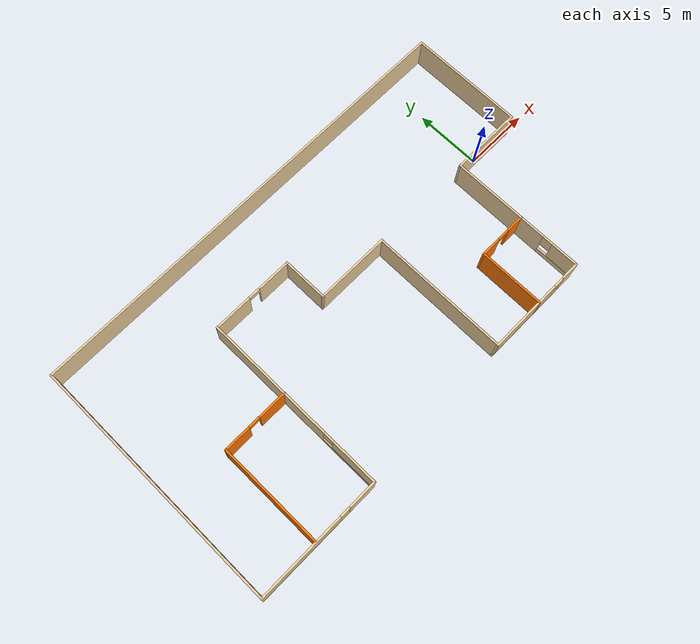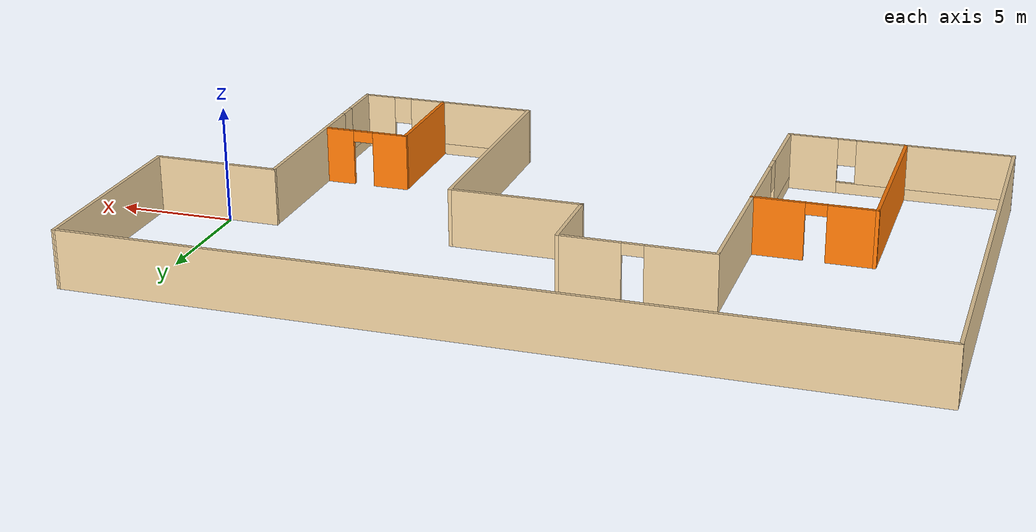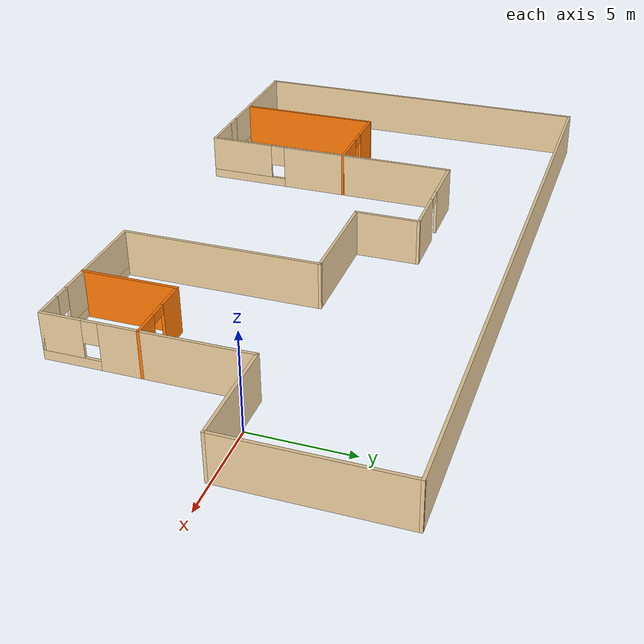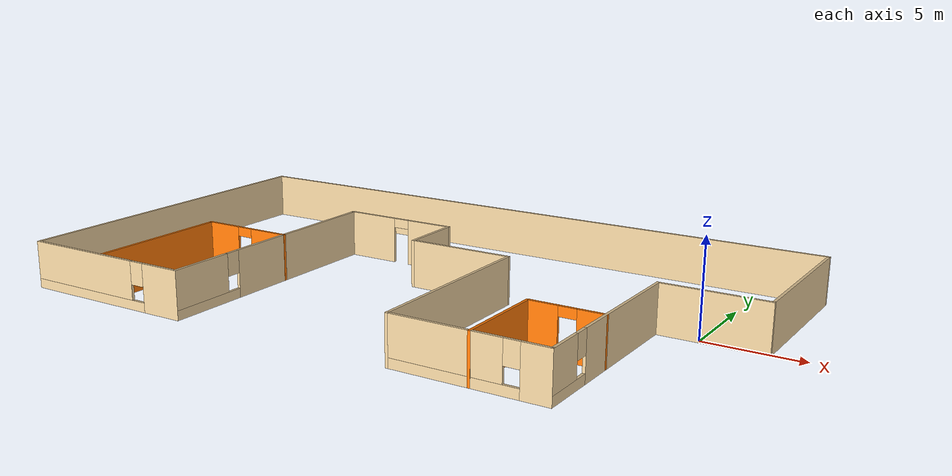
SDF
<?xml version='1.0'?>
<sdf version='1.6'>
  <model name='appartment'>
    <pose frame=''>-14.1397 -1.23394 0 0 -0 0</pose>
    <link name='Wall_0'>
      <collision name='Wall_0_Collision'>
        <geometry>
          <box>
            <size>19.4596 0.15 2.5</size>
          </box>
        </geometry>
        <pose frame=''>0 0 1.25 0 -0 0</pose>
      </collision>
      <visual name='Wall_0_Visual'>
        <pose frame=''>0 0 1.25 0 -0 0</pose>
        <geometry>
          <box>
            <size>19.4596 0.15 2.5</size>
          </box>
        </geometry>
        <material>
          <script>
            <uri>file://media/materials/scripts/gazebo.material</uri>
            <name>Gazebo/Grey</name>
          </script>
          <ambient>0.921569 0.807843 0.615686 1</ambient>
        </material>
        <meta>
          <layer>0</layer>
        </meta>
      </visual>
      <pose frame=''>-17.4083 -0.020065 0 0 -0 1.5708</pose>
    </link>
    <link name='Wall_1'>
      <collision name='Wall_1_Collision'>
        <geometry>
          <box>
            <size>34.9669 0.15 2.5</size>
          </box>
        </geometry>
        <pose frame=''>0 0 1.25 0 -0 0</pose>
      </collision>
      <visual name='Wall_1_Visual'>
        <pose frame=''>0 0 1.25 0 -0 0</pose>
        <geometry>
          <box>
            <size>34.9669 0.15 2.5</size>
          </box>
        </geometry>
        <material>
          <script>
            <uri>file://media/materials/scripts/gazebo.material</uri>
            <name>Gazebo/Grey</name>
          </script>
          <ambient>0.921569 0.807843 0.615686 1</ambient>
        </material>
        <meta>
          <layer>0</layer>
        </meta>
      </visual>
      <pose frame=''>0 9.65496 0 0 -0 0.00115</pose>
    </link>
    <link name='Wall_10'>
      <pose frame=''>-7.7415 -2.62504 0 0 0 -1.57076</pose>
      <visual name='Wall_10_Visual_0'>
        <pose frame=''>-2.2093 0 1.25 0 -0 0</pose>
        <geometry>
          <box>
            <size>9.8314 0.15 2.5</size>
          </box>
        </geometry>
        <material>
          <script>
            <uri>file://media/materials/scripts/gazebo.material</uri>
            <name>Gazebo/Grey</name>
          </script>
          <ambient>0.921569 0.807843 0.615686 1</ambient>
        </material>
        <meta>
          <layer>0</layer>
        </meta>
      </visual>
      <collision name='Wall_10_Collision_0'>
        <geometry>
          <box>
            <size>9.8314 0.15 2.5</size>
          </box>
        </geometry>
        <pose frame=''>-2.2093 0 1.25 0 -0 0</pose>
      </collision>
      <visual name='Wall_10_Visual_1'>
        <pose frame=''>4.9157 0 0.25 0 -0 0</pose>
        <geometry>
          <box>
            <size>4.4186 0.15 0.5</size>
          </box>
        </geometry>
        <material>
          <script>
            <uri>file://media/materials/scripts/gazebo.material</uri>
            <name>Gazebo/Grey</name>
          </script>
          <ambient>0.921569 0.807843 0.615686 1</ambient>
        </material>
        <meta>
          <layer>0</layer>
        </meta>
      </visual>
      <collision name='Wall_10_Collision_1'>
        <geometry>
          <box>
            <size>4.4186 0.15 0.5</size>
          </box>
        </geometry>
        <pose frame=''>4.9157 0 0.25 0 -0 0</pose>
      </collision>
      <visual name='Wall_10_Visual_2'>
        <pose frame=''>5.3157 0 1.5 0 -0 0</pose>
        <geometry>
          <box>
            <size>3.6186 0.15 2</size>
          </box>
        </geometry>
        <material>
          <script>
            <uri>file://media/materials/scripts/gazebo.material</uri>
            <name>Gazebo/Grey</name>
          </script>
          <ambient>0.921569 0.807843 0.615686 1</ambient>
        </material>
        <meta>
          <layer>0</layer>
        </meta>
      </visual>
      <collision name='Wall_10_Collision_2'>
        <geometry>
          <box>
            <size>3.6186 0.15 2</size>
          </box>
        </geometry>
        <pose frame=''>5.3157 0 1.5 0 -0 0</pose>
      </collision>
      <visual name='Wall_10_Visual_3'>
        <pose frame=''>3.1064 0 1.9 0 -0 0</pose>
        <geometry>
          <box>
            <size>0.8 0.15 1.2</size>
          </box>
        </geometry>
        <material>
          <script>
            <uri>file://media/materials/scripts/gazebo.material</uri>
            <name>Gazebo/Grey</name>
          </script>
          <ambient>0.921569 0.807843 0.615686 1</ambient>
        </material>
        <meta>
          <layer>0</layer>
        </meta>
      </visual>
      <collision name='Wall_10_Collision_3'>
        <geometry>
          <box>
            <size>0.8 0.15 1.2</size>
          </box>
        </geometry>
        <pose frame=''>3.1064 0 1.9 0 -0 0</pose>
      </collision>
    </link>
    <link name='Wall_11'>
      <pose frame=''>-12.5748 -9.67507 0 0 -0 3.14159</pose>
      <visual name='Wall_11_Visual_0'>
        <pose frame=''>-3.79039 0 1.25 0 -0 0</pose>
        <geometry>
          <box>
            <size>2.23622 0.15 2.5</size>
          </box>
        </geometry>
        <material>
          <script>
            <uri>file://media/materials/scripts/gazebo.material</uri>
            <name>Gazebo/Grey</name>
          </script>
          <ambient>0.921569 0.807843 0.615686 1</ambient>
        </material>
        <meta>
          <layer>0</layer>
        </meta>
      </visual>
      <collision name='Wall_11_Collision_0'>
        <geometry>
          <box>
            <size>2.23622 0.15 2.5</size>
          </box>
        </geometry>
        <pose frame=''>-3.79039 0 1.25 0 -0 0</pose>
      </collision>
      <visual name='Wall_11_Visual_1'>
        <pose frame=''>1.11811 0 0.25 0 -0 0</pose>
        <geometry>
          <box>
            <size>7.58078 0.15 0.5</size>
          </box>
        </geometry>
        <material>
          <script>
            <uri>file://media/materials/scripts/gazebo.material</uri>
            <name>Gazebo/Grey</name>
          </script>
          <ambient>0.921569 0.807843 0.615686 1</ambient>
        </material>
        <meta>
          <layer>0</layer>
        </meta>
      </visual>
      <collision name='Wall_11_Collision_1'>
        <geometry>
          <box>
            <size>7.58078 0.15 0.5</size>
          </box>
        </geometry>
        <pose frame=''>1.11811 0 0.25 0 -0 0</pose>
      </collision>
      <visual name='Wall_11_Visual_2'>
        <pose frame=''>1.51811 0 1.5 0 -0 0</pose>
        <geometry>
          <box>
            <size>6.78078 0.15 2</size>
          </box>
        </geometry>
        <material>
          <script>
            <uri>file://media/materials/scripts/gazebo.material</uri>
            <name>Gazebo/Grey</name>
          </script>
          <ambient>0.921569 0.807843 0.615686 1</ambient>
        </material>
        <meta>
          <layer>0</layer>
        </meta>
      </visual>
      <collision name='Wall_11_Collision_2'>
        <geometry>
          <box>
            <size>6.78078 0.15 2</size>
          </box>
        </geometry>
        <pose frame=''>1.51811 0 1.5 0 -0 0</pose>
      </collision>
      <visual name='Wall_11_Visual_3'>
        <pose frame=''>-2.27228 0 1.9 0 -0 0</pose>
        <geometry>
          <box>
            <size>0.8 0.15 1.2</size>
          </box>
        </geometry>
        <material>
          <script>
            <uri>file://media/materials/scripts/gazebo.material</uri>
            <name>Gazebo/Grey</name>
          </script>
          <ambient>0.921569 0.807843 0.615686 1</ambient>
        </material>
        <meta>
          <layer>0</layer>
        </meta>
      </visual>
      <collision name='Wall_11_Collision_3'>
        <geometry>
          <box>
            <size>0.8 0.15 1.2</size>
          </box>
        </geometry>
        <pose frame=''>-2.27228 0 1.9 0 -0 0</pose>
      </collision>
    </link>
    <link name='Wall_13'>
      <collision name='Wall_13_Collision'>
        <geometry>
          <box>
            <size>5 0.15 2.5</size>
          </box>
        </geometry>
        <pose frame=''>0 0 1.25 0 -0 0</pose>
      </collision>
      <visual name='Wall_13_Visual'>
        <pose frame=''>0 0 1.25 0 -0 0</pose>
        <geometry>
          <box>
            <size>5 0.15 2.5</size>
          </box>
        </geometry>
        <material>
          <script>
            <uri>file://media/materials/scripts/gazebo.material</uri>
            <name>Gazebo/Grey</name>
          </script>
          <ambient>0.996078 0.47451 0.0196078 1</ambient>
        </material>
        <meta>
          <layer>0</layer>
        </meta>
      </visual>
      <pose frame=''>8.30689 -6.85928 0 0 -0 1.57087</pose>
    </link>
    <link name='Wall_14'>
      <pose frame=''>10.1827 -4.43407 0 0 -0 0</pose>
      <visual name='Wall_14_Visual_0'>
        <pose frame=''>-1.15332 0 1.25 0 -0 0</pose>
        <geometry>
          <box>
            <size>1.59536 0.15 2.5</size>
          </box>
        </geometry>
        <material>
          <script>
            <uri>file://media/materials/scripts/gazebo.material</uri>
            <name>Gazebo/Grey</name>
          </script>
          <ambient>0.996078 0.47451 0.0196078 1</ambient>
        </material>
        <meta>
          <layer>0</layer>
        </meta>
      </visual>
      <collision name='Wall_14_Collision_0'>
        <geometry>
          <box>
            <size>1.59536 0.15 2.5</size>
          </box>
        </geometry>
        <pose frame=''>-1.15332 0 1.25 0 -0 0</pose>
      </collision>
      <visual name='Wall_14_Visual_1'>
        <pose frame=''>1.24768 0 1.25 0 -0 0</pose>
        <geometry>
          <box>
            <size>1.40664 0.15 2.5</size>
          </box>
        </geometry>
        <material>
          <script>
            <uri>file://media/materials/scripts/gazebo.material</uri>
            <name>Gazebo/Grey</name>
          </script>
          <ambient>0.996078 0.47451 0.0196078 1</ambient>
        </material>
        <meta>
          <layer>0</layer>
        </meta>
      </visual>
      <collision name='Wall_14_Collision_1'>
        <geometry>
          <box>
            <size>1.40664 0.15 2.5</size>
          </box>
        </geometry>
        <pose frame=''>1.24768 0 1.25 0 -0 0</pose>
      </collision>
      <visual name='Wall_14_Visual_2'>
        <pose frame=''>0.094359 0 2.25 0 -0 0</pose>
        <geometry>
          <box>
            <size>0.9 0.15 0.5</size>
          </box>
        </geometry>
        <material>
          <script>
            <uri>file://media/materials/scripts/gazebo.material</uri>
            <name>Gazebo/Grey</name>
          </script>
          <ambient>0.996078 0.47451 0.0196078 1</ambient>
        </material>
        <meta>
          <layer>0</layer>
        </meta>
      </visual>
      <collision name='Wall_14_Collision_2'>
        <geometry>
          <box>
            <size>0.9 0.15 0.5</size>
          </box>
        </geometry>
        <pose frame=''>0.094359 0 2.25 0 -0 0</pose>
      </collision>
    </link>
    <link name='Wall_16'>
      <pose frame=''>-10.2844 -1.75625 0 0 -0 3.14159</pose>
      <visual name='Wall_16_Visual_0'>
        <pose frame=''>-1.4933 0 1.25 0 -0 0</pose>
        <geometry>
          <box>
            <size>2.26341 0.15 2.5</size>
          </box>
        </geometry>
        <material>
          <script>
            <uri>file://media/materials/scripts/gazebo.material</uri>
            <name>Gazebo/Grey</name>
          </script>
          <ambient>0.996078 0.47451 0.0196078 1</ambient>
        </material>
        <meta>
          <layer>0</layer>
        </meta>
      </visual>
      <collision name='Wall_16_Collision_0'>
        <geometry>
          <box>
            <size>2.26341 0.15 2.5</size>
          </box>
        </geometry>
        <pose frame=''>-1.4933 0 1.25 0 -0 0</pose>
      </collision>
      <visual name='Wall_16_Visual_1'>
        <pose frame=''>1.5817 0 1.25 0 -0 0</pose>
        <geometry>
          <box>
            <size>2.08659 0.15 2.5</size>
          </box>
        </geometry>
        <material>
          <script>
            <uri>file://media/materials/scripts/gazebo.material</uri>
            <name>Gazebo/Grey</name>
          </script>
          <ambient>0.996078 0.47451 0.0196078 1</ambient>
        </material>
        <meta>
          <layer>0</layer>
        </meta>
      </visual>
      <collision name='Wall_16_Collision_1'>
        <geometry>
          <box>
            <size>2.08659 0.15 2.5</size>
          </box>
        </geometry>
        <pose frame=''>1.5817 0 1.25 0 -0 0</pose>
      </collision>
      <visual name='Wall_16_Visual_2'>
        <pose frame=''>0.088408 0 2.25 0 -0 0</pose>
        <geometry>
          <box>
            <size>0.9 0.15 0.5</size>
          </box>
        </geometry>
        <material>
          <script>
            <uri>file://media/materials/scripts/gazebo.material</uri>
            <name>Gazebo/Grey</name>
          </script>
          <ambient>0.996078 0.47451 0.0196078 1</ambient>
        </material>
        <meta>
          <layer>0</layer>
        </meta>
      </visual>
      <collision name='Wall_16_Collision_2'>
        <geometry>
          <box>
            <size>0.9 0.15 0.5</size>
          </box>
        </geometry>
        <pose frame=''>0.088408 0 2.25 0 -0 0</pose>
      </collision>
    </link>
    <link name='Wall_17'>
      <collision name='Wall_17_Collision'>
        <geometry>
          <box>
            <size>8 0.15 2.5</size>
          </box>
        </geometry>
        <pose frame=''>0 0 1.25 0 -0 0</pose>
      </collision>
      <visual name='Wall_17_Visual'>
        <pose frame=''>0 0 1.25 0 -0 0</pose>
        <geometry>
          <box>
            <size>8 0.15 2.5</size>
          </box>
        </geometry>
        <material>
          <script>
            <uri>file://media/materials/scripts/gazebo.material</uri>
            <name>Gazebo/Grey</name>
          </script>
          <ambient>0.996078 0.47451 0.0196078 1</ambient>
        </material>
        <meta>
          <layer>0</layer>
        </meta>
      </visual>
      <pose frame=''>-12.8344 -5.68124 0 0 0 -1.5708</pose>
    </link>
    <link name='Wall_2'>
      <collision name='Wall_2_Collision'>
        <geometry>
          <box>
            <size>8.75 0.15 2.5</size>
          </box>
        </geometry>
        <pose frame=''>0 0 1.25 0 -0 0</pose>
      </collision>
      <visual name='Wall_2_Visual'>
        <pose frame=''>0 0 1.25 0 -0 0</pose>
        <geometry>
          <box>
            <size>8.75 0.15 2.5</size>
          </box>
        </geometry>
        <material>
          <script>
            <uri>file://media/materials/scripts/gazebo.material</uri>
            <name>Gazebo/Grey</name>
          </script>
          <ambient>0.921569 0.807843 0.615686 1</ambient>
        </material>
        <meta>
          <layer>0</layer>
        </meta>
      </visual>
      <pose frame=''>17.4083 5.37498 0 0 0 -1.5708</pose>
    </link>
    <link name='Wall_3'>
      <collision name='Wall_3_Collision'>
        <geometry>
          <box>
            <size>5.5 0.15 2.5</size>
          </box>
        </geometry>
        <pose frame=''>0 0 1.25 0 -0 0</pose>
      </collision>
      <visual name='Wall_3_Visual'>
        <pose frame=''>0 0 1.25 0 -0 0</pose>
        <geometry>
          <box>
            <size>5.5 0.15 2.5</size>
          </box>
        </geometry>
        <material>
          <script>
            <uri>file://media/materials/scripts/gazebo.material</uri>
            <name>Gazebo/Grey</name>
          </script>
          <ambient>0.921569 0.807843 0.615686 1</ambient>
        </material>
        <meta>
          <layer>0</layer>
        </meta>
      </visual>
      <pose frame=''>14.7333 1.07498 0 0 -0 3.14159</pose>
    </link>
    <link name='Wall_4'>
      <pose frame=''>12.0583 -4.10002 0 0 0 -1.5708</pose>
      <visual name='Wall_4_Visual_0'>
        <pose frame=''>-1.46402 0 1.25 0 -0 0</pose>
        <geometry>
          <box>
            <size>7.57196 0.15 2.5</size>
          </box>
        </geometry>
        <material>
          <script>
            <uri>file://media/materials/scripts/gazebo.material</uri>
            <name>Gazebo/Grey</name>
          </script>
          <ambient>0.921569 0.807843 0.615686 1</ambient>
        </material>
        <meta>
          <layer>0</layer>
        </meta>
      </visual>
      <collision name='Wall_4_Collision_0'>
        <geometry>
          <box>
            <size>7.57196 0.15 2.5</size>
          </box>
        </geometry>
        <pose frame=''>-1.46402 0 1.25 0 -0 0</pose>
      </collision>
      <visual name='Wall_4_Visual_1'>
        <pose frame=''>3.78598 0 0.25 0 -0 0</pose>
        <geometry>
          <box>
            <size>2.92803 0.15 0.5</size>
          </box>
        </geometry>
        <material>
          <script>
            <uri>file://media/materials/scripts/gazebo.material</uri>
            <name>Gazebo/Grey</name>
          </script>
          <ambient>0.921569 0.807843 0.615686 1</ambient>
        </material>
        <meta>
          <layer>0</layer>
        </meta>
      </visual>
      <collision name='Wall_4_Collision_1'>
        <geometry>
          <box>
            <size>2.92803 0.15 0.5</size>
          </box>
        </geometry>
        <pose frame=''>3.78598 0 0.25 0 -0 0</pose>
      </collision>
      <visual name='Wall_4_Visual_2'>
        <pose frame=''>4.18598 0 1.5 0 -0 0</pose>
        <geometry>
          <box>
            <size>2.12804 0.15 2</size>
          </box>
        </geometry>
        <material>
          <script>
            <uri>file://media/materials/scripts/gazebo.material</uri>
            <name>Gazebo/Grey</name>
          </script>
          <ambient>0.921569 0.807843 0.615686 1</ambient>
        </material>
        <meta>
          <layer>0</layer>
        </meta>
      </visual>
      <collision name='Wall_4_Collision_2'>
        <geometry>
          <box>
            <size>2.12804 0.15 2</size>
          </box>
        </geometry>
        <pose frame=''>4.18598 0 1.5 0 -0 0</pose>
      </collision>
      <visual name='Wall_4_Visual_3'>
        <pose frame=''>2.72196 0 1.9 0 -0 0</pose>
        <geometry>
          <box>
            <size>0.8 0.15 1.2</size>
          </box>
        </geometry>
        <material>
          <script>
            <uri>file://media/materials/scripts/gazebo.material</uri>
            <name>Gazebo/Grey</name>
          </script>
          <ambient>0.921569 0.807843 0.615686 1</ambient>
        </material>
        <meta>
          <layer>0</layer>
        </meta>
      </visual>
      <collision name='Wall_4_Collision_3'>
        <geometry>
          <box>
            <size>0.8 0.15 1.2</size>
          </box>
        </geometry>
        <pose frame=''>2.72196 0 1.9 0 -0 0</pose>
      </collision>
    </link>
    <link name='Wall_5'>
      <pose frame=''>8.13328 -9.27502 0 0 -0 3.14159</pose>
      <visual name='Wall_5_Visual_0'>
        <pose frame=''>-3.2719 0 1.25 0 -0 0</pose>
        <geometry>
          <box>
            <size>1.4562 0.15 2.5</size>
          </box>
        </geometry>
        <material>
          <script>
            <uri>file://media/materials/scripts/gazebo.material</uri>
            <name>Gazebo/Grey</name>
          </script>
          <ambient>0.921569 0.807843 0.615686 1</ambient>
        </material>
        <meta>
          <layer>0</layer>
        </meta>
      </visual>
      <collision name='Wall_5_Collision_0'>
        <geometry>
          <box>
            <size>1.4562 0.15 2.5</size>
          </box>
        </geometry>
        <pose frame=''>-3.2719 0 1.25 0 -0 0</pose>
      </collision>
      <visual name='Wall_5_Visual_1'>
        <pose frame=''>0.728102 0 0.25 0 -0 0</pose>
        <geometry>
          <box>
            <size>6.5438 0.15 0.5</size>
          </box>
        </geometry>
        <material>
          <script>
            <uri>file://media/materials/scripts/gazebo.material</uri>
            <name>Gazebo/Grey</name>
          </script>
          <ambient>0.921569 0.807843 0.615686 1</ambient>
        </material>
        <meta>
          <layer>0</layer>
        </meta>
      </visual>
      <collision name='Wall_5_Collision_1'>
        <geometry>
          <box>
            <size>6.5438 0.15 0.5</size>
          </box>
        </geometry>
        <pose frame=''>0.728102 0 0.25 0 -0 0</pose>
      </collision>
      <visual name='Wall_5_Visual_2'>
        <pose frame=''>1.1281 0 1.5 0 -0 0</pose>
        <geometry>
          <box>
            <size>5.7438 0.15 2</size>
          </box>
        </geometry>
        <material>
          <script>
            <uri>file://media/materials/scripts/gazebo.material</uri>
            <name>Gazebo/Grey</name>
          </script>
          <ambient>0.921569 0.807843 0.615686 1</ambient>
        </material>
        <meta>
          <layer>0</layer>
        </meta>
      </visual>
      <collision name='Wall_5_Collision_2'>
        <geometry>
          <box>
            <size>5.7438 0.15 2</size>
          </box>
        </geometry>
        <pose frame=''>1.1281 0 1.5 0 -0 0</pose>
      </collision>
      <visual name='Wall_5_Visual_3'>
        <pose frame=''>-2.14379 0 1.9 0 -0 0</pose>
        <geometry>
          <box>
            <size>0.8 0.15 1.2</size>
          </box>
        </geometry>
        <material>
          <script>
            <uri>file://media/materials/scripts/gazebo.material</uri>
            <name>Gazebo/Grey</name>
          </script>
          <ambient>0.921569 0.807843 0.615686 1</ambient>
        </material>
        <meta>
          <layer>0</layer>
        </meta>
      </visual>
      <collision name='Wall_5_Collision_3'>
        <geometry>
          <box>
            <size>0.8 0.15 1.2</size>
          </box>
        </geometry>
        <pose frame=''>-2.14379 0 1.9 0 -0 0</pose>
      </collision>
    </link>
    <link name='Wall_6'>
      <collision name='Wall_6_Collision'>
        <geometry>
          <box>
            <size>10.5 0.15 2.5</size>
          </box>
        </geometry>
        <pose frame=''>0 0 1.25 0 -0 0</pose>
      </collision>
      <visual name='Wall_6_Visual'>
        <pose frame=''>0 0 1.25 0 -0 0</pose>
        <geometry>
          <box>
            <size>10.5 0.15 2.5</size>
          </box>
        </geometry>
        <material>
          <script>
            <uri>file://media/materials/scripts/gazebo.material</uri>
            <name>Gazebo/Grey</name>
          </script>
          <ambient>0.921569 0.807843 0.615686 1</ambient>
        </material>
        <meta>
          <layer>0</layer>
        </meta>
      </visual>
      <pose frame=''>4.20828 -4.10002 0 0 -0 1.5708</pose>
    </link>
    <link name='Wall_7'>
      <collision name='Wall_7_Collision'>
        <geometry>
          <box>
            <size>5.75 0.15 2.5</size>
          </box>
        </geometry>
        <pose frame=''>0 0 1.25 0 -0 0</pose>
      </collision>
      <visual name='Wall_7_Visual'>
        <pose frame=''>0 0 1.25 0 -0 0</pose>
        <geometry>
          <box>
            <size>5.75 0.15 2.5</size>
          </box>
        </geometry>
        <material>
          <script>
            <uri>file://media/materials/scripts/gazebo.material</uri>
            <name>Gazebo/Grey</name>
          </script>
          <ambient>0.921569 0.807843 0.615686 1</ambient>
        </material>
        <meta>
          <layer>0</layer>
        </meta>
      </visual>
      <pose frame=''>1.40828 1.07498 0 0 -0 3.14159</pose>
    </link>
    <link name='Wall_8'>
      <collision name='Wall_8_Collision'>
        <geometry>
          <box>
            <size>3.5 0.15 2.5</size>
          </box>
        </geometry>
        <pose frame=''>0 0 1.25 0 -0 0</pose>
      </collision>
      <visual name='Wall_8_Visual'>
        <pose frame=''>0 0 1.25 0 -0 0</pose>
        <geometry>
          <box>
            <size>3.5 0.15 2.5</size>
          </box>
        </geometry>
        <material>
          <script>
            <uri>file://media/materials/scripts/gazebo.material</uri>
            <name>Gazebo/Grey</name>
          </script>
          <ambient>0.921569 0.807843 0.615686 1</ambient>
        </material>
        <meta>
          <layer>0</layer>
        </meta>
      </visual>
      <pose frame=''>-1.39172 2.74998 0 0 -0 1.5708</pose>
    </link>
    <link name='Wall_9'>
      <pose frame=''>-4.56672 4.42498 0 0 -0 3.14159</pose>
      <visual name='Wall_9_Visual_0'>
        <pose frame=''>-1.91954 0 1.25 0 -0 0</pose>
        <geometry>
          <box>
            <size>2.66093 0.15 2.5</size>
          </box>
        </geometry>
        <material>
          <script>
            <uri>file://media/materials/scripts/gazebo.material</uri>
            <name>Gazebo/Grey</name>
          </script>
          <ambient>0.921569 0.807843 0.615686 1</ambient>
        </material>
        <meta>
          <layer>0</layer>
        </meta>
      </visual>
      <collision name='Wall_9_Collision_0'>
        <geometry>
          <box>
            <size>2.66093 0.15 2.5</size>
          </box>
        </geometry>
        <pose frame=''>-1.91954 0 1.25 0 -0 0</pose>
      </collision>
      <visual name='Wall_9_Visual_1'>
        <pose frame=''>1.78046 0 1.25 0 -0 0</pose>
        <geometry>
          <box>
            <size>2.93907 0.15 2.5</size>
          </box>
        </geometry>
        <material>
          <script>
            <uri>file://media/materials/scripts/gazebo.material</uri>
            <name>Gazebo/Grey</name>
          </script>
          <ambient>0.921569 0.807843 0.615686 1</ambient>
        </material>
        <meta>
          <layer>0</layer>
        </meta>
      </visual>
      <collision name='Wall_9_Collision_1'>
        <geometry>
          <box>
            <size>2.93907 0.15 2.5</size>
          </box>
        </geometry>
        <pose frame=''>1.78046 0 1.25 0 -0 0</pose>
      </collision>
      <visual name='Wall_9_Visual_2'>
        <pose frame=''>-0.139072 0 2.25 0 -0 0</pose>
        <geometry>
          <box>
            <size>0.9 0.15 0.5</size>
          </box>
        </geometry>
        <material>
          <script>
            <uri>file://media/materials/scripts/gazebo.material</uri>
            <name>Gazebo/Grey</name>
          </script>
          <ambient>0.921569 0.807843 0.615686 1</ambient>
        </material>
        <meta>
          <layer>0</layer>
        </meta>
      </visual>
      <collision name='Wall_9_Collision_2'>
        <geometry>
          <box>
            <size>0.9 0.15 0.5</size>
          </box>
        </geometry>
        <pose frame=''>-0.139072 0 2.25 0 -0 0</pose>
      </collision>
    </link>
    <static>1</static>
  </model>
</sdf>
